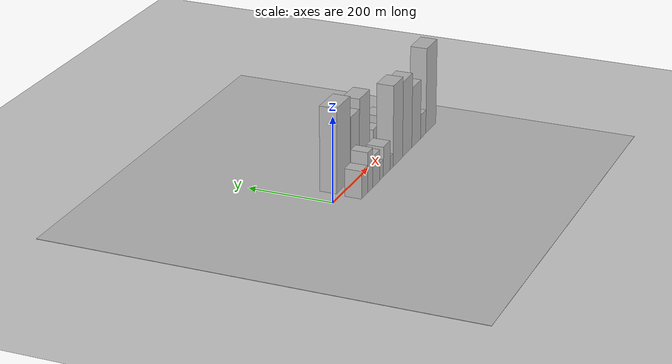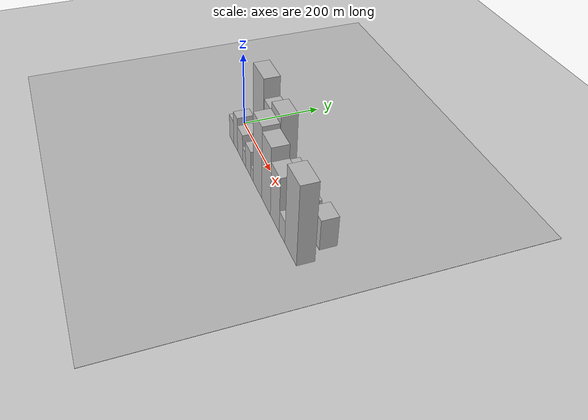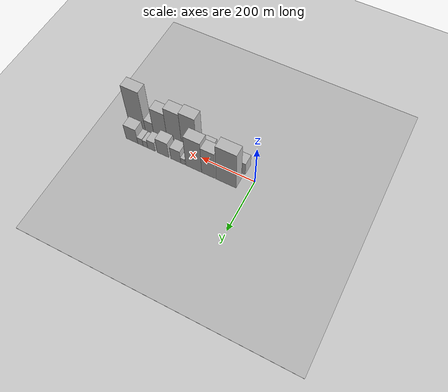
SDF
<?xml version="1.0" encoding="utf-8"?>

<sdf version="1.6">

   <world name="default">

      <gui fullscreen="0">

         <camera name="user_camera">

            <pose>-15 0 4.57585 0 0 0</pose>

            <view_controller>orbit</view_controller>

         </camera>

      </gui>

      <scene>

         <sky>

           <clouds>

             <speed>12</speed>

           </clouds>

         </sky>

         <ambient>0.4 0.4 0.4 1</ambient>

         <background>0.7 0.7 0.7 1</background>

         <shadows>1</shadows>

      </scene>

      <gravity>0 0 -9.8066</gravity>

      <magnetic_field>6e-06 2.3e-05 -4.2e-05</magnetic_field>

      <physics default="0" name="default_physics" type="ode">

         <ode>

            <solver>

               <type>quick</type>

               <iters>10</iters>

               <sor>1.0</sor>

               <use_dynamic_moi_rescaling>0</use_dynamic_moi_rescaling>

            </solver>

            <constraints>

               <cfm>0</cfm>

               <erp>0.2</erp>

               <contact_max_correcting_vel>100</contact_max_correcting_vel>

               <contact_surface_layer>0.001</contact_surface_layer>

            </constraints>

         </ode>

         <max_step_size>0.004</max_step_size>

         <real_time_factor>1</real_time_factor>

         <real_time_update_rate>250</real_time_update_rate>

      </physics>

      <light name="sun" type="directional">

         <cast_shadows>1</cast_shadows>

         <pose>0 0 10 0 0 0</pose>

         <diffuse>0.8 0.8 0.8 1</diffuse>

         <specular>0.2 0.2 0.2 1</specular>

         <attenuation>

            <range>1000</range>

            <constant>0.9</constant>

            <linear>0.01</linear>

            <quadratic>0.001</quadratic>

         </attenuation>

         <direction>-0.5 0.1 -0.9</direction>

      </light>

      <include>

         <name>ground_plane_1</name>

         <uri>model://HANNAS_ground_plane</uri>

         <pose>0 0 0  0 0 0</pose>

      </include>

      <include>

         <name>ground_plane_2</name>

         <uri>model://HANNAS_ground_plane</uri>

         <pose>100 0 0  0 0 0</pose>

      </include>

      <model name="building_1">

         <static>1</static>

         <pose frame="">81.6557 30.0000 0 0.000000 0.000000 1.570796</pose>

         <link name="link">

            <pose frame="">0 0 100.50 0 0 0</pose>

            <collision name="collision">

               <geometry>

                  <box>

                     <size>40.0000 75.3114 201.0000</size>

                  </box>

               </geometry>

               <max_contacts>10</max_contacts>

               <surface>

                  <contact>

                     <ode/>

                  </contact>

                  <bounce/>

                  <friction>

                     <torsional>

                        <ode/>

                     </torsional>

                     <ode/>

                  </friction>

               </surface>

            </collision>

            <visual name="visual">

               <cast_shadows>0</cast_shadows>

               <geometry>

                  <box>

                     <size>40.0000 75.3114 201.0000</size>

                  </box>

               </geometry>

               <material>

                  <script>

                     <uri>model://HANNAS_wall/materials/scripts</uri>

                     <uri>model://HANNAS_wall/materials/textures</uri>

                     <name>vrc/HANNAS_wall</name>

                  </script>

               </material>

            </visual>

            <self_collide>0</self_collide>

            <enable_wind>0</enable_wind>

            <kinematic>0</kinematic>

         </link>

      </model>

      <model name="building_2">

         <static>1</static>

         <pose frame="">148.3312 30.0000 0 0.000000 0.000000 1.570796</pose>

         <link name="link">

            <pose frame="">0 0 75.00 0 0 0</pose>

            <collision name="collision">

               <geometry>

                  <box>

                     <size>40.0000 50.0395 150.0000</size>

                  </box>

               </geometry>

               <max_contacts>10</max_contacts>

               <surface>

                  <contact>

                     <ode/>

                  </contact>

                  <bounce/>

                  <friction>

                     <torsional>

                        <ode/>

                     </torsional>

                     <ode/>

                  </friction>

               </surface>

            </collision>

            <visual name="visual">

               <cast_shadows>0</cast_shadows>

               <geometry>

                  <box>

                     <size>40.0000 50.0395 150.0000</size>

                  </box>

               </geometry>

               <material>

                  <script>

                     <uri>model://HANNAS_wall/materials/scripts</uri>

                     <uri>model://HANNAS_wall/materials/textures</uri>

                     <name>vrc/HANNAS_wall</name>

                  </script>

               </material>

            </visual>

            <self_collide>0</self_collide>

            <enable_wind>0</enable_wind>

            <kinematic>0</kinematic>

         </link>

      </model>

      <model name="building_3">

         <static>1</static>

         <pose frame="">203.7426 30.0000 0 0.000000 0.000000 1.570796</pose>

         <link name="link">

            <pose frame="">0 0 87.00 0 0 0</pose>

            <collision name="collision">

               <geometry>

                  <box>

                     <size>40.0000 60.7833 174.0000</size>

                  </box>

               </geometry>

               <max_contacts>10</max_contacts>

               <surface>

                  <contact>

                     <ode/>

                  </contact>

                  <bounce/>

                  <friction>

                     <torsional>

                        <ode/>

                     </torsional>

                     <ode/>

                  </friction>

               </surface>

            </collision>

            <visual name="visual">

               <cast_shadows>0</cast_shadows>

               <geometry>

                  <box>

                     <size>40.0000 60.7833 174.0000</size>

                  </box>

               </geometry>

               <material>

                  <script>

                     <uri>model://HANNAS_wall/materials/scripts</uri>

                     <uri>model://HANNAS_wall/materials/textures</uri>

                     <name>vrc/HANNAS_wall</name>

                  </script>

               </material>

            </visual>

            <self_collide>0</self_collide>

            <enable_wind>0</enable_wind>

            <kinematic>0</kinematic>

         </link>

      </model>

      <model name="building_4">

         <static>1</static>

         <pose frame="">245.4275 30.0000 0 0.000000 0.000000 1.570796</pose>

         <link name="link">

            <pose frame="">0 0 16.50 0 0 0</pose>

            <collision name="collision">

               <geometry>

                  <box>

                     <size>40.0000 16.5865 33.0000</size>

                  </box>

               </geometry>

               <max_contacts>10</max_contacts>

               <surface>

                  <contact>

                     <ode/>

                  </contact>

                  <bounce/>

                  <friction>

                     <torsional>

                        <ode/>

                     </torsional>

                     <ode/>

                  </friction>

               </surface>

            </collision>

            <visual name="visual">

               <cast_shadows>0</cast_shadows>

               <geometry>

                  <box>

                     <size>40.0000 16.5865 33.0000</size>

                  </box>

               </geometry>

               <material>

                  <script>

                     <uri>model://HANNAS_wall/materials/scripts</uri>

                     <uri>model://HANNAS_wall/materials/textures</uri>

                     <name>vrc/HANNAS_wall</name>

                  </script>

               </material>

            </visual>

            <self_collide>0</self_collide>

            <enable_wind>0</enable_wind>

            <kinematic>0</kinematic>

         </link>

      </model>

      <model name="building_5">

         <static>1</static>

         <pose frame="">273.1363 30.0000 0 0.000000 0.000000 1.570796</pose>

         <link name="link">

            <pose frame="">0 0 34.50 0 0 0</pose>

            <collision name="collision">

               <geometry>

                  <box>

                     <size>40.0000 38.8312 69.0000</size>

                  </box>

               </geometry>

               <max_contacts>10</max_contacts>

               <surface>

                  <contact>

                     <ode/>

                  </contact>

                  <bounce/>

                  <friction>

                     <torsional>

                        <ode/>

                     </torsional>

                     <ode/>

                  </friction>

               </surface>

            </collision>

            <visual name="visual">

               <cast_shadows>0</cast_shadows>

               <geometry>

                  <box>

                     <size>40.0000 38.8312 69.0000</size>

                  </box>

               </geometry>

               <material>

                  <script>

                     <uri>model://HANNAS_wall/materials/scripts</uri>

                     <uri>model://HANNAS_wall/materials/textures</uri>

                     <name>vrc/HANNAS_wall</name>

                  </script>

               </material>

            </visual>

            <self_collide>0</self_collide>

            <enable_wind>0</enable_wind>

            <kinematic>0</kinematic>

         </link>

      </model>

      <model name="building_6">

         <static>1</static>

         <pose frame="">323.5756 30.0000 0 0.000000 0.000000 1.570796</pose>

         <link name="link">

            <pose frame="">0 0 42.00 0 0 0</pose>

            <collision name="collision">

               <geometry>

                  <box>

                     <size>40.0000 46.0475 84.0000</size>

                  </box>

               </geometry>

               <max_contacts>10</max_contacts>

               <surface>

                  <contact>

                     <ode/>

                  </contact>

                  <bounce/>

                  <friction>

                     <torsional>

                        <ode/>

                     </torsional>

                     <ode/>

                  </friction>

               </surface>

            </collision>

            <visual name="visual">

               <cast_shadows>0</cast_shadows>

               <geometry>

                  <box>

                     <size>40.0000 46.0475 84.0000</size>

                  </box>

               </geometry>

               <material>

                  <script>

                     <uri>model://HANNAS_wall/materials/scripts</uri>

                     <uri>model://HANNAS_wall/materials/textures</uri>

                     <name>vrc/HANNAS_wall</name>

                  </script>

               </material>

            </visual>

            <self_collide>0</self_collide>

            <enable_wind>0</enable_wind>

            <kinematic>0</kinematic>

         </link>

      </model>

      <model name="building_7">

         <static>1</static>

         <pose frame="">369.3355 30.0000 0 0.000000 0.000000 1.570796</pose>

         <link name="link">

            <pose frame="">0 0 25.50 0 0 0</pose>

            <collision name="collision">

               <geometry>

                  <box>

                     <size>40.0000 29.4723 51.0000</size>

                  </box>

               </geometry>

               <max_contacts>10</max_contacts>

               <surface>

                  <contact>

                     <ode/>

                  </contact>

                  <bounce/>

                  <friction>

                     <torsional>

                        <ode/>

                     </torsional>

                     <ode/>

                  </friction>

               </surface>

            </collision>

            <visual name="visual">

               <cast_shadows>0</cast_shadows>

               <geometry>

                  <box>

                     <size>40.0000 29.4723 51.0000</size>

                  </box>

               </geometry>

               <material>

                  <script>

                     <uri>model://HANNAS_wall/materials/scripts</uri>

                     <uri>model://HANNAS_wall/materials/textures</uri>

                     <name>vrc/HANNAS_wall</name>

                  </script>

               </material>

            </visual>

            <self_collide>0</self_collide>

            <enable_wind>0</enable_wind>

            <kinematic>0</kinematic>

         </link>

      </model>

      <model name="building_8">

         <static>1</static>

         <pose frame="">393.4310 30.0000 0 0.000000 0.000000 1.570796</pose>

         <link name="link">

            <pose frame="">0 0 18.00 0 0 0</pose>

            <collision name="collision">

               <geometry>

                  <box>

                     <size>40.0000 18.7187 36.0000</size>

                  </box>

               </geometry>

               <max_contacts>10</max_contacts>

               <surface>

                  <contact>

                     <ode/>

                  </contact>

                  <bounce/>

                  <friction>

                     <torsional>

                        <ode/>

                     </torsional>

                     <ode/>

                  </friction>

               </surface>

            </collision>

            <visual name="visual">

               <cast_shadows>0</cast_shadows>

               <geometry>

                  <box>

                     <size>40.0000 18.7187 36.0000</size>

                  </box>

               </geometry>

               <material>

                  <script>

                     <uri>model://HANNAS_wall/materials/scripts</uri>

                     <uri>model://HANNAS_wall/materials/textures</uri>

                     <name>vrc/HANNAS_wall</name>

                  </script>

               </material>

            </visual>

            <self_collide>0</self_collide>

            <enable_wind>0</enable_wind>

            <kinematic>0</kinematic>

         </link>

      </model>

      <model name="building_9">

         <static>1</static>

         <pose frame="">413.2855 30.0000 0 0.000000 0.000000 1.570796</pose>

         <link name="link">

            <pose frame="">0 0 19.50 0 0 0</pose>

            <collision name="collision">

               <geometry>

                  <box>

                     <size>40.0000 20.9903 39.0000</size>

                  </box>

               </geometry>

               <max_contacts>10</max_contacts>

               <surface>

                  <contact>

                     <ode/>

                  </contact>

                  <bounce/>

                  <friction>

                     <torsional>

                        <ode/>

                     </torsional>

                     <ode/>

                  </friction>

               </surface>

            </collision>

            <visual name="visual">

               <cast_shadows>0</cast_shadows>

               <geometry>

                  <box>

                     <size>40.0000 20.9903 39.0000</size>

                  </box>

               </geometry>

               <material>

                  <script>

                     <uri>model://HANNAS_wall/materials/scripts</uri>

                     <uri>model://HANNAS_wall/materials/textures</uri>

                     <name>vrc/HANNAS_wall</name>

                  </script>

               </material>

            </visual>

            <self_collide>0</self_collide>

            <enable_wind>0</enable_wind>

            <kinematic>0</kinematic>

         </link>

      </model>

      <model name="building_10">

         <static>1</static>

         <pose frame="">447.5968 30.0000 0 0.000000 0.000000 1.570796</pose>

         <link name="link">

            <pose frame="">0 0 40.50 0 0 0</pose>

            <collision name="collision">

               <geometry>

                  <box>

                     <size>40.0000 47.6323 81.0000</size>

                  </box>

               </geometry>

               <max_contacts>10</max_contacts>

               <surface>

                  <contact>

                     <ode/>

                  </contact>

                  <bounce/>

                  <friction>

                     <torsional>

                        <ode/>

                     </torsional>

                     <ode/>

                  </friction>

               </surface>

            </collision>

            <visual name="visual">

               <cast_shadows>0</cast_shadows>

               <geometry>

                  <box>

                     <size>40.0000 47.6323 81.0000</size>

                  </box>

               </geometry>

               <material>

                  <script>

                     <uri>model://HANNAS_wall/materials/scripts</uri>

                     <uri>model://HANNAS_wall/materials/textures</uri>

                     <name>vrc/HANNAS_wall</name>

                  </script>

               </material>

            </visual>

            <self_collide>0</self_collide>

            <enable_wind>0</enable_wind>

            <kinematic>0</kinematic>

         </link>

      </model>

      <model name="building_11">

         <static>1</static>

         <pose frame="">57.1904 -30.0000 0 0.000000 0.000000 1.570796</pose>

         <link name="link">

            <pose frame="">0 0 33.00 0 0 0</pose>

            <collision name="collision">

               <geometry>

                  <box>

                     <size>40.0000 34.3808 66.0000</size>

                  </box>

               </geometry>

               <max_contacts>10</max_contacts>

               <surface>

                  <contact>

                     <ode/>

                  </contact>

                  <bounce/>

                  <friction>

                     <torsional>

                        <ode/>

                     </torsional>

                     <ode/>

                  </friction>

               </surface>

            </collision>

            <visual name="visual">

               <cast_shadows>0</cast_shadows>

               <geometry>

                  <box>

                     <size>40.0000 34.3808 66.0000</size>

                  </box>

               </geometry>

               <material>

                  <script>

                     <uri>model://HANNAS_wall/materials/scripts</uri>

                     <uri>model://HANNAS_wall/materials/textures</uri>

                     <name>vrc/HANNAS_wall</name>

                  </script>

               </material>

            </visual>

            <self_collide>0</self_collide>

            <enable_wind>0</enable_wind>

            <kinematic>0</kinematic>

         </link>

      </model>

      <model name="building_12">

         <static>1</static>

         <pose frame="">89.3682 -30.0000 0 0.000000 0.000000 1.570796</pose>

         <link name="link">

            <pose frame="">0 0 48.00 0 0 0</pose>

            <collision name="collision">

               <geometry>

                  <box>

                     <size>40.0000 29.9749 96.0000</size>

                  </box>

               </geometry>

               <max_contacts>10</max_contacts>

               <surface>

                  <contact>

                     <ode/>

                  </contact>

                  <bounce/>

                  <friction>

                     <torsional>

                        <ode/>

                     </torsional>

                     <ode/>

                  </friction>

               </surface>

            </collision>

            <visual name="visual">

               <cast_shadows>0</cast_shadows>

               <geometry>

                  <box>

                     <size>40.0000 29.9749 96.0000</size>

                  </box>

               </geometry>

               <material>

                  <script>

                     <uri>model://HANNAS_wall/materials/scripts</uri>

                     <uri>model://HANNAS_wall/materials/textures</uri>

                     <name>vrc/HANNAS_wall</name>

                  </script>

               </material>

            </visual>

            <self_collide>0</self_collide>

            <enable_wind>0</enable_wind>

            <kinematic>0</kinematic>

         </link>

      </model>

      <model name="building_13">

         <static>1</static>

         <pose frame="">124.7605 -30.0000 0 0.000000 0.000000 1.570796</pose>

         <link name="link">

            <pose frame="">0 0 37.50 0 0 0</pose>

            <collision name="collision">

               <geometry>

                  <box>

                     <size>40.0000 40.8096 75.0000</size>

                  </box>

               </geometry>

               <max_contacts>10</max_contacts>

               <surface>

                  <contact>

                     <ode/>

                  </contact>

                  <bounce/>

                  <friction>

                     <torsional>

                        <ode/>

                     </torsional>

                     <ode/>

                  </friction>

               </surface>

            </collision>

            <visual name="visual">

               <cast_shadows>0</cast_shadows>

               <geometry>

                  <box>

                     <size>40.0000 40.8096 75.0000</size>

                  </box>

               </geometry>

               <material>

                  <script>

                     <uri>model://HANNAS_wall/materials/scripts</uri>

                     <uri>model://HANNAS_wall/materials/textures</uri>

                     <name>vrc/HANNAS_wall</name>

                  </script>

               </material>

            </visual>

            <self_collide>0</self_collide>

            <enable_wind>0</enable_wind>

            <kinematic>0</kinematic>

         </link>

      </model>

      <model name="building_14">

         <static>1</static>

         <pose frame="">155.8961 -30.0000 0 0.000000 0.000000 1.570796</pose>

         <link name="link">

            <pose frame="">0 0 21.00 0 0 0</pose>

            <collision name="collision">

               <geometry>

                  <box>

                     <size>40.0000 21.4616 42.0000</size>

                  </box>

               </geometry>

               <max_contacts>10</max_contacts>

               <surface>

                  <contact>

                     <ode/>

                  </contact>

                  <bounce/>

                  <friction>

                     <torsional>

                        <ode/>

                     </torsional>

                     <ode/>

                  </friction>

               </surface>

            </collision>

            <visual name="visual">

               <cast_shadows>0</cast_shadows>

               <geometry>

                  <box>

                     <size>40.0000 21.4616 42.0000</size>

                  </box>

               </geometry>

               <material>

                  <script>

                     <uri>model://HANNAS_wall/materials/scripts</uri>

                     <uri>model://HANNAS_wall/materials/textures</uri>

                     <name>vrc/HANNAS_wall</name>

                  </script>

               </material>

            </visual>

            <self_collide>0</self_collide>

            <enable_wind>0</enable_wind>

            <kinematic>0</kinematic>

         </link>

      </model>

      <model name="building_15">

         <static>1</static>

         <pose frame="">186.4524 -30.0000 0 0.000000 0.000000 1.570796</pose>

         <link name="link">

            <pose frame="">0 0 36.00 0 0 0</pose>

            <collision name="collision">

               <geometry>

                  <box>

                     <size>40.0000 39.6511 72.0000</size>

                  </box>

               </geometry>

               <max_contacts>10</max_contacts>

               <surface>

                  <contact>

                     <ode/>

                  </contact>

                  <bounce/>

                  <friction>

                     <torsional>

                        <ode/>

                     </torsional>

                     <ode/>

                  </friction>

               </surface>

            </collision>

            <visual name="visual">

               <cast_shadows>0</cast_shadows>

               <geometry>

                  <box>

                     <size>40.0000 39.6511 72.0000</size>

                  </box>

               </geometry>

               <material>

                  <script>

                     <uri>model://HANNAS_wall/materials/scripts</uri>

                     <uri>model://HANNAS_wall/materials/textures</uri>

                     <name>vrc/HANNAS_wall</name>

                  </script>

               </material>

            </visual>

            <self_collide>0</self_collide>

            <enable_wind>0</enable_wind>

            <kinematic>0</kinematic>

         </link>

      </model>

      <model name="building_16">

         <static>1</static>

         <pose frame="">215.6067 -30.0000 0 0.000000 0.000000 1.570796</pose>

         <link name="link">

            <pose frame="">0 0 16.50 0 0 0</pose>

            <collision name="collision">

               <geometry>

                  <box>

                     <size>40.0000 18.6576 33.0000</size>

                  </box>

               </geometry>

               <max_contacts>10</max_contacts>

               <surface>

                  <contact>

                     <ode/>

                  </contact>

                  <bounce/>

                  <friction>

                     <torsional>

                        <ode/>

                     </torsional>

                     <ode/>

                  </friction>

               </surface>

            </collision>

            <visual name="visual">

               <cast_shadows>0</cast_shadows>

               <geometry>

                  <box>

                     <size>40.0000 18.6576 33.0000</size>

                  </box>

               </geometry>

               <material>

                  <script>

                     <uri>model://HANNAS_wall/materials/scripts</uri>

                     <uri>model://HANNAS_wall/materials/textures</uri>

                     <name>vrc/HANNAS_wall</name>

                  </script>

               </material>

            </visual>

            <self_collide>0</self_collide>

            <enable_wind>0</enable_wind>

            <kinematic>0</kinematic>

         </link>

      </model>

      <model name="building_17">

         <static>1</static>

         <pose frame="">254.2596 -30.0000 0 0.000000 0.000000 1.570796</pose>

         <link name="link">

            <pose frame="">0 0 97.50 0 0 0</pose>

            <collision name="collision">

               <geometry>

                  <box>

                     <size>40.0000 58.6482 195.0000</size>

                  </box>

               </geometry>

               <max_contacts>10</max_contacts>

               <surface>

                  <contact>

                     <ode/>

                  </contact>

                  <bounce/>

                  <friction>

                     <torsional>

                        <ode/>

                     </torsional>

                     <ode/>

                  </friction>

               </surface>

            </collision>

            <visual name="visual">

               <cast_shadows>0</cast_shadows>

               <geometry>

                  <box>

                     <size>40.0000 58.6482 195.0000</size>

                  </box>

               </geometry>

               <material>

                  <script>

                     <uri>model://HANNAS_wall/materials/scripts</uri>

                     <uri>model://HANNAS_wall/materials/textures</uri>

                     <name>vrc/HANNAS_wall</name>

                  </script>

               </material>

            </visual>

            <self_collide>0</self_collide>

            <enable_wind>0</enable_wind>

            <kinematic>0</kinematic>

         </link>

      </model>

      <model name="building_18">

         <static>1</static>

         <pose frame="">312.5923 -30.0000 0 0.000000 0.000000 1.570796</pose>

         <link name="link">

            <pose frame="">0 0 91.50 0 0 0</pose>

            <collision name="collision">

               <geometry>

                  <box>

                     <size>40.0000 58.0172 183.0000</size>

                  </box>

               </geometry>

               <max_contacts>10</max_contacts>

               <surface>

                  <contact>

                     <ode/>

                  </contact>

                  <bounce/>

                  <friction>

                     <torsional>

                        <ode/>

                     </torsional>

                     <ode/>

                  </friction>

               </surface>

            </collision>

            <visual name="visual">

               <cast_shadows>0</cast_shadows>

               <geometry>

                  <box>

                     <size>40.0000 58.0172 183.0000</size>

                  </box>

               </geometry>

               <material>

                  <script>

                     <uri>model://HANNAS_wall/materials/scripts</uri>

                     <uri>model://HANNAS_wall/materials/textures</uri>

                     <name>vrc/HANNAS_wall</name>

                  </script>

               </material>

            </visual>

            <self_collide>0</self_collide>

            <enable_wind>0</enable_wind>

            <kinematic>0</kinematic>

         </link>

      </model>

      <model name="building_19">

         <static>1</static>

         <pose frame="">369.1238 -30.0000 0 0.000000 0.000000 1.570796</pose>

         <link name="link">

            <pose frame="">0 0 73.50 0 0 0</pose>

            <collision name="collision">

               <geometry>

                  <box>

                     <size>40.0000 55.0456 147.0000</size>

                  </box>

               </geometry>

               <max_contacts>10</max_contacts>

               <surface>

                  <contact>

                     <ode/>

                  </contact>

                  <bounce/>

                  <friction>

                     <torsional>

                        <ode/>

                     </torsional>

                     <ode/>

                  </friction>

               </surface>

            </collision>

            <visual name="visual">

               <cast_shadows>0</cast_shadows>

               <geometry>

                  <box>

                     <size>40.0000 55.0456 147.0000</size>

                  </box>

               </geometry>

               <material>

                  <script>

                     <uri>model://HANNAS_wall/materials/scripts</uri>

                     <uri>model://HANNAS_wall/materials/textures</uri>

                     <name>vrc/HANNAS_wall</name>

                  </script>

               </material>

            </visual>

            <self_collide>0</self_collide>

            <enable_wind>0</enable_wind>

            <kinematic>0</kinematic>

         </link>

      </model>

      <model name="building_20">

         <static>1</static>

         <pose frame="">413.7458 -30.0000 0 0.000000 0.000000 1.570796</pose>

         <link name="link">

            <pose frame="">0 0 30.00 0 0 0</pose>

            <collision name="collision">

               <geometry>

                  <box>

                     <size>40.0000 34.1984 60.0000</size>

                  </box>

               </geometry>

               <max_contacts>10</max_contacts>

               <surface>

                  <contact>

                     <ode/>

                  </contact>

                  <bounce/>

                  <friction>

                     <torsional>

                        <ode/>

                     </torsional>

                     <ode/>

                  </friction>

               </surface>

            </collision>

            <visual name="visual">

               <cast_shadows>0</cast_shadows>

               <geometry>

                  <box>

                     <size>40.0000 34.1984 60.0000</size>

                  </box>

               </geometry>

               <material>

                  <script>

                     <uri>model://HANNAS_wall/materials/scripts</uri>

                     <uri>model://HANNAS_wall/materials/textures</uri>

                     <name>vrc/HANNAS_wall</name>

                  </script>

               </material>

            </visual>

            <self_collide>0</self_collide>

            <enable_wind>0</enable_wind>

            <kinematic>0</kinematic>

         </link>

      </model>

      <model name="building_21">

         <static>1</static>

         <pose frame="">464.2165 -30.0000 0 0.000000 0.000000 1.570796</pose>

         <link name="link">

            <pose frame="">0 0 105.00 0 0 0</pose>

            <collision name="collision">

               <geometry>

                  <box>

                     <size>40.0000 66.7431 210.0000</size>

                  </box>

               </geometry>

               <max_contacts>10</max_contacts>

               <surface>

                  <contact>

                     <ode/>

                  </contact>

                  <bounce/>

                  <friction>

                     <torsional>

                        <ode/>

                     </torsional>

                     <ode/>

                  </friction>

               </surface>

            </collision>

            <visual name="visual">

               <cast_shadows>0</cast_shadows>

               <geometry>

                  <box>

                     <size>40.0000 66.7431 210.0000</size>

                  </box>

               </geometry>

               <material>

                  <script>

                     <uri>model://HANNAS_wall/materials/scripts</uri>

                     <uri>model://HANNAS_wall/materials/textures</uri>

                     <name>vrc/HANNAS_wall</name>

                  </script>

               </material>

            </visual>

            <self_collide>0</self_collide>

            <enable_wind>0</enable_wind>

            <kinematic>0</kinematic>

         </link>

      </model>

   </world>

</sdf>

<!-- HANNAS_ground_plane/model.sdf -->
<sdf version="1.4">
<model name="HANNAS_ground_plane">
  <static>true</static>
    <link name="link">
      <collision name="collision">
        <geometry>
          <plane>
            <normal>0 0 1</normal>
            <size>1000 1000</size>
          </plane>
        </geometry>
        <surface>
          <friction>
            <ode>
              <mu>100</mu>
              <mu2>50</mu2>
            </ode>
          </friction>
        </surface>
      </collision>
      <visual name="visual">
        <cast_shadows>false</cast_shadows>
        <geometry>
          <plane>
            <normal>0 0 1</normal>
            <size>1000 1000</size>
          </plane>
        </geometry>
        <material>
          <script>
            <uri>model://HANNAS_ground_plane/materials/scripts/HANNAS_ground_plane.material</uri>
	    <uri>model://HANNAS_ground_plane/materials/textures</uri>
            <name>HANNASGroundPlane/Image</name>
          </script>
        </material>
      </visual>
    </link>
  </model>
</sdf>
